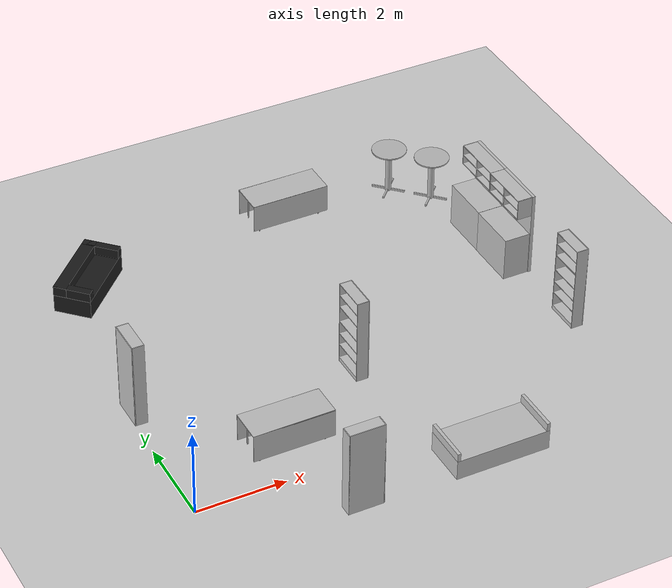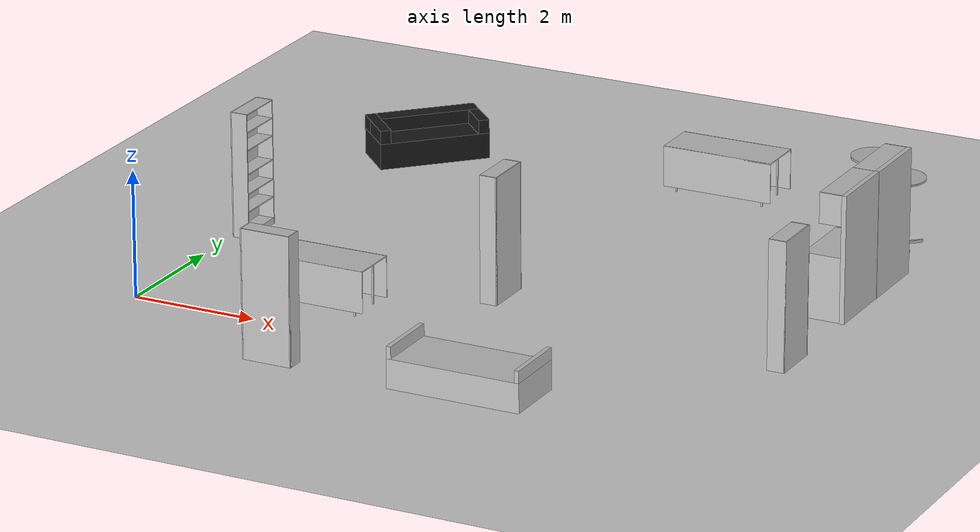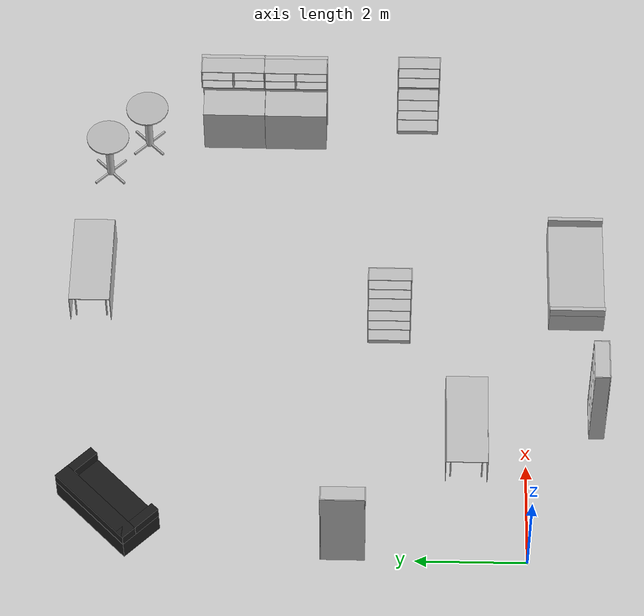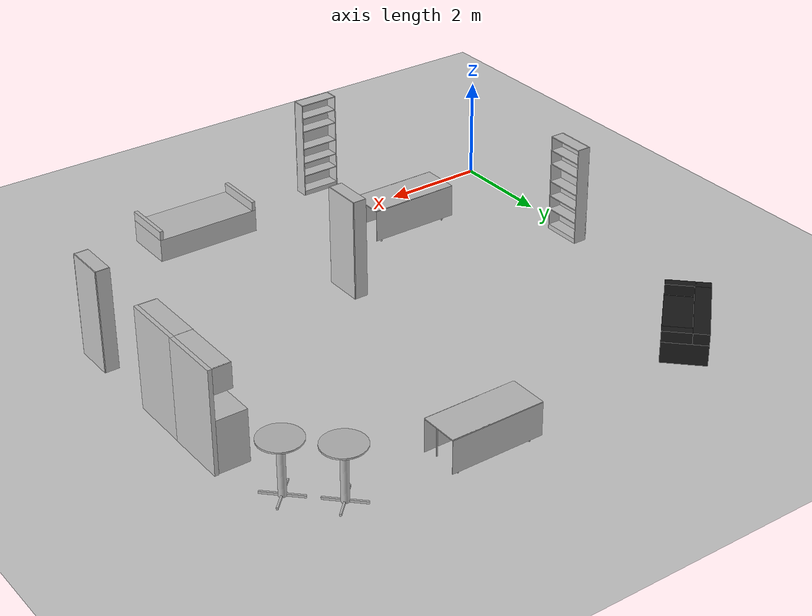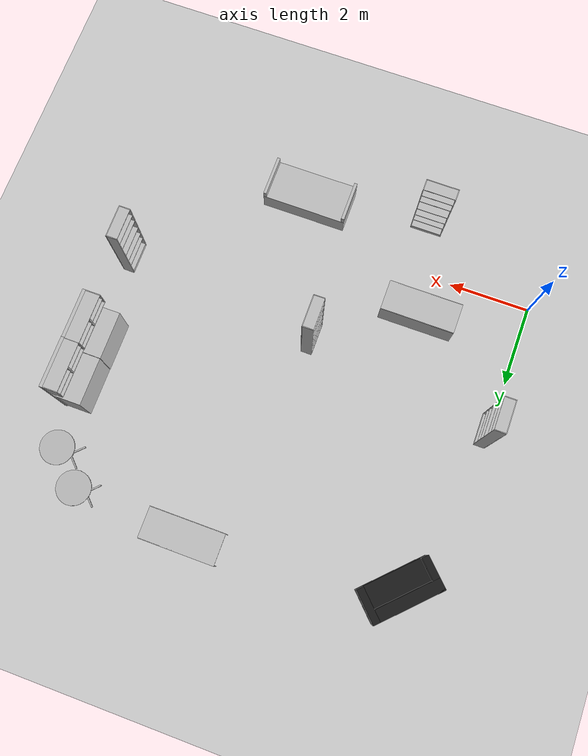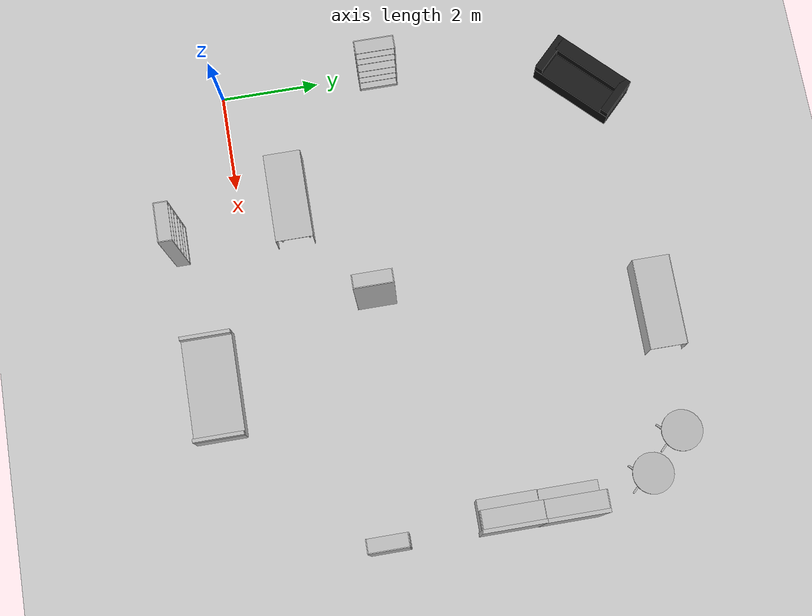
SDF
<sdf version="1.6">
 <world name="rgo2018">
  <light name="sun" type="directional">
   <direction>0.5 0.1 -0.9</direction>
   <pose>0 0 10 0 0 0</pose>
   <specular>0.2 0.2 0.2 1</specular>
   <diffuse>0.8 0.8 0.8 1</diffuse>
   <attenuation>
    <range>1000</range>
    <quadratic>0.001</quadratic>
    <constant>0.9</constant>
    <linear>0.01</linear>
   </attenuation>
  </light>
  <model name="living_room" type="room">
   <link name="in">
    <virtual_volume name="in1_vv">
     <geometry><box><size>3.0 2.5 0.01</size></box></geometry>
     <pose>2.5 -1.25 0.005 0 0 0</pose>
    </virtual_volume>
   </link>
   <link name="in">
    <virtual_volume name="in1_vv">
     <geometry><box><size>3.0 2.5 0.01</size></box></geometry>
     <pose>2.5 -1.25 0.005 0 0 0</pose>
    </virtual_volume>
   </link>
   <pose>3.0 6.0 0 0 0 0</pose>
   <static>true</static>
  </model>
  <model name="bedroom" type="room">
   <link name="in">
    <virtual_volume name="in_vv">
     <geometry><box><size>5.0 5.0 0.01</size></box></geometry>
     <pose>-0.5 0.0 0.005 0 0 0</pose>
    </virtual_volume>
   </link>
   <pose>8.0 1.0 0 0 0 0</pose>
   <static>true</static>
  </model>
  <model name="dining_room" type="room">
   <link name="in">
    <virtual_volume name="in_vv">
     <geometry><box><size>5 4.8 0.01</size></box></geometry>
     <pose>-0.5 1.05 0.005 0 0 0</pose>
    </virtual_volume>
   </link>
   <pose>3.0 0.0 0 0 0 0</pose>
   <static>true</static>
  </model>
  <model name="kitchen" type="room">
   <link name="in">
    <virtual_volume name="in1_vv">
     <geometry><box><size>5.7 2.5 0.01</size></box></geometry>
     <pose>-0.15 0.25 0.005 0 0 0</pose>
    </virtual_volume>
   </link>
   <link name="in">
    <virtual_volume name="in1_vv">
     <geometry><box><size>5.7 2.5 0.01</size></box></geometry>
     <pose>-0.15 0.25 0.005 0 0 0</pose>
    </virtual_volume>
   </link>
   <pose>7.0 7.0 0 0 0 0</pose>
   <static>true</static>
  </model>
  <model name="initial_pose" type="waypoint"><pose>-0.4 0.0 0 0 0 0</pose><static>true</static></model>
  <model name="initial_pose_2"><pose>8.48 -1.9 0 0 0 1.571</pose><static>true</static></model>
  <model name="lars" type="waypoint"><pose>8.0 6.5 0 0 0 1.5708</pose><static>true</static></model>
  <model name="waypoint_door_final" type="waypoint">
   <pose>1.0 0.0 0 0 0 3.141592</pose>
   <static>true</static>
  </model>
  <model name="bedroom_waypoint" type="waypoint"><pose>8.0 3.0 0 0 0 -2.3562</pose><static>true</static></model>
  <model name="kitchen_waypoint" type="waypoint"><pose>8.0 5.0 0 0 0 2.3562</pose><static>true</static></model>
  <model name="living_room_waypoint" type="waypoint">
   <pose>1.0 5.0 0 0 0 0.7854</pose>
   <static>true</static>
  </model>
  <model name="dining_room_waypoint" type="waypoint">
   <pose>1.5 3.0 0 0 0 -0.7854</pose>
   <static>true</static>
  </model>
  <model name="registration_table1" type="waypoint"><pose>5.0 7.0 0 0 0 0</pose><static>true</static></model>
  <model name="registration_table2" type="waypoint"><pose>3.0 7.0 0 0 0 0</pose><static>true</static></model>
  <model name="registration_table3" type="waypoint"><pose>7.0 7.0 0 0 0 0</pose><static>true</static></model>
  <model name="exit_1_rips" type="waypoint"><pose>8.45 -2.8 0 0 0 -1.571</pose><static>true</static></model>
  <model name="exit_2_rips" type="waypoint"><pose>8.45 -2.24 0 0 0 -1.571</pose><static>true</static></model>
  <model name="exit_3_rips" type="waypoint"><pose>8.45 -1.4 0 0 0 -1.571</pose><static>true</static></model>
  <model name="exit_4_rips" type="waypoint"><pose>8.45 0.0 0 0 0 -1.571</pose><static>true</static></model>
  <model name="gpsr_meeting_point" type="waypoint">
   <pose>5.0 6.6 0 0 0 -3.141592</pose>
   <static>true</static>
  </model>
  <model name="gpsr_exit_door_1" type="waypoint">
   <pose>8.45 -2.8 0 0 0 -1.571</pose>
   <static>true</static>
  </model>
  <model name="gpsr_meeting_point_2" type="waypoint"><pose>1.5 4.25 0 0 0 0</pose><static>true</static></model>
  <model name="gpsr_exit_door_2" type="waypoint">
   <pose>-1.0 0.0 0 0 0 -3.1415</pose>
   <static>true</static>
  </model>
  <model name="challenge_open_ask_waypoint" type="waypoint">
   <pose>4.0 6.0 0 0 0 3.1415</pose>
   <static>true</static>
  </model>
  <model name="final_meeting_point" type="waypoint">
   <pose>5.0 7.0 0 0 0 -1.57</pose>
   <static>true</static>
  </model>
  <model name="help_me_carry_starting_point" type="waypoint">
   <pose>8.0 4.5 0 0 0 1.5708</pose>
   <static>true</static>
  </model>
  <model name="eegpsr_pose_1" type="waypoint"><pose>0.4 4.5 0 0 0 0.0</pose><static>true</static></model>
  <model name="eegpsr_exit_door_1" type="waypoint">
   <pose>-1.0 0.0 0 0 0 3.1415</pose>
   <static>true</static>
  </model>
  <model name="eegpsr_pose_2" type="waypoint"><pose>6.6 4.2 0 0 0 1.571</pose><static>true</static></model>
  <model name="eegpsr_exit_door_2" type="waypoint">
   <pose>8.45 -2.8 0 0 0 -1.571</pose>
   <static>true</static>
  </model>
  <include><name>floor</name><uri>model://ground_plane</uri></include>
  <include>
   <pose>2.53 1.08 0.0 0 0 3.141585</pose>
   <name>dining_table</name>
   <uri>model://rgo2018/table_dinner</uri>
  </include>
  <include>
   <pose>3.02732 -1.283567 0.0 0 0 1.5708</pose>
   <name>display_case</name>
   <uri>model://rgo2018/bookcase</uri>
  </include>
  <include><pose>0.144 3.274 0.0 0 0 0.0</pose><name>cabinet</name><uri>model://rgo2018/bookcase</uri></include>
  <include>
   <pose>4.8 2.5 0.0 0 0 3.141592</pose>
   <name>storage_shelf</name>
   <uri>model://rgo2018/bookcase</uri>
  </include>
  <include>
   <pose>0.930263 7.469865 0.0 0 0 -0.7854</pose>
   <name>couch</name>
   <uri>model://rgo2018/couch</uri>
  </include>
  <include>
   <pose>5.922403 8.027883 0.0 0 0 3.14159</pose>
   <name>kitchen_table</name>
   <uri>model://rgo2018/table_dinner2</uri>
  </include>
  <include><pose>9.22352 7.158925 0.0 0 0 2.3562</pose><name>bar</name><uri>model://rgo2018/bar</uri></include>
  <include>
   <pose>9.53186 4.334334 0.0 0 0 3.141585</pose>
   <name>kitchen_cabinet</name>
   <uri>model://rgo2018/kitchen_sink</uri>
  </include>
  <include>
   <pose>9.537166 5.509867 0.0 0 0 3.141585</pose>
   <name>sink</name>
   <uri>model://rgo2018/kitchen_sink</uri>
  </include>
  <include>
   <pose>6.076955 -0.96774 0.0 0 0 -1.5708</pose>
   <name>bed</name>
   <uri>model://rgo2018/bed_frame</uri>
  </include>
  <include>
   <pose>9.7 2.0 0.0 0 0 3.141592</pose>
   <name>bookcase</name>
   <uri>model://rgo2018/bookcase</uri>
  </include>
  <physics type="ode">
   <real_time_update_rate>333.0</real_time_update_rate>
   <max_step_size>0.003</max_step_size>
   <ode><constraints><cfm>0.0001</cfm></constraints><solver><type>quick</type><iters>100</iters></solver></ode>
  </physics>
 </world>
</sdf>

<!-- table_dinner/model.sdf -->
<sdf version="1.6">
  <model name="rgo2018/table_dinner">
    <link name="1_link">
      <collision name="1_col">
        <geometry>
          <box>
            <size>1.83 0.76 0.018</size>
          </box>
        </geometry>
      </collision>
      <visual name="1_vis">
        <geometry>
          <box>
            <size>1.83 0.76 0.018</size>
          </box>
        </geometry>
        <material>
          <ambient>0.75 0.75 0.75 1</ambient>
        </material>
      </visual>
      <pose>0 0 0.751 0 0 0</pose>
    </link>
    <link name="2_link">
      <collision name="2_col">
        <geometry>
          <box>
            <size>1.83 0.01 0.66</size>
          </box>
        </geometry>
      </collision>
      <visual name="2_vis">
        <geometry>
          <box>
            <size>1.83 0.01 0.66</size>
          </box>
        </geometry>
        <material>
          <ambient>0.75 0.75 0.75 1</ambient>
        </material>
      </visual>
      <pose>0 0.375 0.43 0 0 0</pose>
    </link>
    <link name="3_link">
      <collision name="3_col">
        <geometry>
          <box>
            <size>1.83 0.01 0.66</size>
          </box>
        </geometry>
      </collision>
      <visual name="3_vis">
        <geometry>
          <box>
            <size>1.83 0.01 0.66</size>
          </box>
        </geometry>
        <material>
          <ambient>0.75 0.75 0.75 1</ambient>
        </material>
      </visual>
      <pose>0 -0.375 0.43 0 0 0</pose>
    </link>
    <link name="4_link">
      <collision name="4_col">
        <geometry>
          <box>
            <size>0.025 0.025 0.742</size>
          </box>
        </geometry>
      </collision>
      <visual name="4_vis">
        <geometry>
          <box>
            <size>0.025 0.025 0.742</size>
          </box>
        </geometry>
        <material>
          <ambient>0.75 0.75 0.75 1</ambient>
        </material>
      </visual>
      <pose>-0.7325 -0.2825 0.371 0 0 0</pose>
    </link>
    <link name="5_link">
      <collision name="5_col">
        <geometry>
          <box>
            <size>0.025 0.025 0.742</size>
          </box>
        </geometry>
      </collision>
      <visual name="5_vis">
        <geometry>
          <box>
            <size>0.025 0.025 0.742</size>
          </box>
        </geometry>
        <material>
          <ambient>0.75 0.75 0.75 1</ambient>
        </material>
      </visual>
      <pose>0.7325 -0.2825 0.371 0 0 0</pose>
    </link>
    <link name="6_link">
      <collision name="6_col">
        <geometry>
          <box>
            <size>0.025 0.025 0.742</size>
          </box>
        </geometry>
      </collision>
      <visual name="6_vis">
        <geometry>
          <box>
            <size>0.025 0.025 0.742</size>
          </box>
        </geometry>
        <material>
          <ambient>0.75 0.75 0.75 1</ambient>
        </material>
      </visual>
      <pose>-0.7325 0.2825 0.371 0 0 0</pose>
    </link>
    <link name="7_link">
      <collision name="7_col">
        <geometry>
          <box>
            <size>0.025 0.025 0.742</size>
          </box>
        </geometry>
      </collision>
      <visual name="7_vis">
        <geometry>
          <box>
            <size>0.025 0.025 0.742</size>
          </box>
        </geometry>
        <material>
          <ambient>0.75 0.75 0.75 1</ambient>
        </material>
      </visual>
      <pose>0.7325 0.2825 0.371 0 0 0</pose>
    </link>
    <link name="on_top_of">
      <virtual_volume name="on_top_of_vv">
        <geometry>
          <box>
            <size>1.77 0.7 0.25</size>
          </box>
        </geometry>
        <pose>0.0 0.0 0.905 0 0 0</pose>
      </virtual_volume>
    </link>
    <link name="in_front_of">
      <virtual_volume name="in_front_of_vv">
        <geometry>
          <box>
            <size>3.63 0.56 0.01</size>
          </box>
        </geometry>
        <pose>0.0 0.0 0.005 0 0 0</pose>
      </virtual_volume>
    </link>
    <static>true</static>
  </model>
</sdf>

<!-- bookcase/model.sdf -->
<sdf version="1.6">
  <model name="rgo2018/bookcase">
    <link name="1_link">
      <collision name="1_col">
        <geometry>
          <box>
            <size>0.28 0.018 2.015</size>
          </box>
        </geometry>
      </collision>
      <visual name="1_vis">
        <geometry>
          <box>
            <size>0.28 0.018 2.015</size>
          </box>
        </geometry>
        <material>
          <ambient>0.75 0.75 0.75 1</ambient>
        </material>
      </visual>
      <pose>0 -0.39 1.0075 0 0 0</pose>
    </link>
    <link name="2_link">
      <collision name="2_col">
        <geometry>
          <box>
            <size>0.28 0.018 2.015</size>
          </box>
        </geometry>
      </collision>
      <visual name="2_vis">
        <geometry>
          <box>
            <size>0.28 0.018 2.015</size>
          </box>
        </geometry>
        <material>
          <ambient>0.75 0.75 0.75 1</ambient>
        </material>
      </visual>
      <pose>0 0.39 1.0075 0 0 0</pose>
    </link>
    <link name="3_link">
      <collision name="3_col">
        <geometry>
          <box>
            <size>0.018 0.798 2.015</size>
          </box>
        </geometry>
      </collision>
      <visual name="3_vis">
        <geometry>
          <box>
            <size>0.018 0.798 2.015</size>
          </box>
        </geometry>
        <material>
          <ambient>0.75 0.75 0.75 1</ambient>
        </material>
      </visual>
      <pose>-0.131 0 1.0075 0 0 0</pose>
    </link>
    <link name="4_link">
      <collision name="4_col">
        <geometry>
          <box>
            <size>0.262 0.762 0.018</size>
          </box>
        </geometry>
      </collision>
      <visual name="4_vis">
        <geometry>
          <box>
            <size>0.262 0.762 0.018</size>
          </box>
        </geometry>
        <material>
          <ambient>0.75 0.75 0.75 1</ambient>
        </material>
      </visual>
      <pose>0.009 0 2.006 0 0 0</pose>
    </link>
    <link name="5_link">
      <collision name="5_col">
        <geometry>
          <box>
            <size>0.262 0.762 0.097</size>
          </box>
        </geometry>
      </collision>
      <visual name="5_vis">
        <geometry>
          <box>
            <size>0.262 0.762 0.097</size>
          </box>
        </geometry>
        <material>
          <ambient>0.75 0.75 0.75 1</ambient>
        </material>
      </visual>
      <pose>0.009 0 0.0485 0 0 0</pose>
    </link>
    <link name="6_link">
      <collision name="6_col">
        <geometry>
          <box>
            <size>0.262 0.762 0.018</size>
          </box>
        </geometry>
      </collision>
      <visual name="6_vis">
        <geometry>
          <box>
            <size>0.262 0.762 0.018</size>
          </box>
        </geometry>
        <material>
          <ambient>0.75 0.75 0.75 1</ambient>
        </material>
      </visual>
      <pose>0.009 0 0.439 0 0 0</pose>
    </link>
    <link name="7_link">
      <collision name="7_col">
        <geometry>
          <box>
            <size>0.262 0.762 0.018</size>
          </box>
        </geometry>
      </collision>
      <visual name="7_vis">
        <geometry>
          <box>
            <size>0.262 0.762 0.018</size>
          </box>
        </geometry>
        <material>
          <ambient>0.75 0.75 0.75 1</ambient>
        </material>
      </visual>
      <pose>0.009 0 0.726 0 0 0</pose>
    </link>
    <link name="8_link">
      <collision name="8_col">
        <geometry>
          <box>
            <size>0.262 0.762 0.018</size>
          </box>
        </geometry>
      </collision>
      <visual name="8_vis">
        <geometry>
          <box>
            <size>0.262 0.762 0.018</size>
          </box>
        </geometry>
        <material>
          <ambient>0.75 0.75 0.75 1</ambient>
        </material>
      </visual>
      <pose>0.009 0 1.044 0 0 0</pose>
    </link>
    <link name="9_link">
      <collision name="9_col">
        <geometry>
          <box>
            <size>0.262 0.762 0.018</size>
          </box>
        </geometry>
      </collision>
      <visual name="9_vis">
        <geometry>
          <box>
            <size>0.262 0.762 0.018</size>
          </box>
        </geometry>
        <material>
          <ambient>0.75 0.75 0.75 1</ambient>
        </material>
      </visual>
      <pose>0.009 0 1.43 0 0 0</pose>
    </link>
    <link name="10_link">
      <collision name="10_col">
        <geometry>
          <box>
            <size>0.262 0.762 0.018</size>
          </box>
        </geometry>
      </collision>
      <visual name="10_vis">
        <geometry>
          <box>
            <size>0.262 0.762 0.018</size>
          </box>
        </geometry>
        <material>
          <ambient>0.75 0.75 0.75 1</ambient>
        </material>
      </visual>
      <pose>0.009 0 1.718 0 0 0</pose>
    </link>
    <link name="in_front_of">
      <virtual_volume name="in_front_of_vv">
        <geometry>
          <box>
            <size>0.2 0.4 0.01</size>
          </box>
        </geometry>
        <pose>0.64 0.0 0.005 0 0 0</pose>
      </virtual_volume>
    </link>
    <link name="on_top_of">
      <virtual_volume name="on_top_of_vv">
        <geometry>
          <box>
            <size>0.202 0.702 0.25</size>
          </box>
        </geometry>
        <pose>0.009 0.0 0.88 0 0 0</pose>
      </virtual_volume>
    </link>
    <link name="shelf1">
      <virtual_volume name="shelf1_vv">
        <geometry>
          <box>
            <size>0.202 0.702 0.25</size>
          </box>
        </geometry>
        <pose>0.009 0.0 0.242 0 0 0</pose>
      </virtual_volume>
    </link>
    <link name="shelf2">
      <virtual_volume name="shelf2_vv">
        <geometry>
          <box>
            <size>0.202 0.702 0.212</size>
          </box>
        </geometry>
        <pose>0.009 0.0 0.574 0 0 0</pose>
      </virtual_volume>
    </link>
    <link name="shelf3">
      <virtual_volume name="shelf3_vv">
        <geometry>
          <box>
            <size>0.202 0.702 0.25</size>
          </box>
        </geometry>
        <pose>0.009 0.0 0.88 0 0 0</pose>
      </virtual_volume>
    </link>
    <link name="shelf4">
      <virtual_volume name="shelf4_vv">
        <geometry>
          <box>
            <size>0.202 0.702 0.25</size>
          </box>
        </geometry>
        <pose>0.009 0.0 1.198 0 0 0</pose>
      </virtual_volume>
    </link>
    <link name="shelf5">
      <virtual_volume name="shelf5_vv">
        <geometry>
          <box>
            <size>0.202 0.702 0.221</size>
          </box>
        </geometry>
        <pose>0.009 0.0 1.5695 0 0 0</pose>
      </virtual_volume>
    </link>
    <link name="shelf6">
      <virtual_volume name="shelf6_vv">
        <geometry>
          <box>
            <size>0.202 0.702 0.223</size>
          </box>
        </geometry>
        <pose>0.009 0.0 1.8585 0 0 0</pose>
      </virtual_volume>
    </link>
    <static>true</static>
  </model>
</sdf>

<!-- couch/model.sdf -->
<sdf version="1.6">
  <model name="rgo2018/couch">
    <link name="1_link">
      <collision name="1_col">
        <geometry>
          <box>
            <size>0.85 1.8 0.42</size>
          </box>
        </geometry>
      </collision>
      <visual name="1_vis">
        <geometry>
          <box>
            <size>0.85 1.8 0.42</size>
          </box>
        </geometry>
        <material>
          <ambient>0.1 0.1 0.1 1</ambient>
        </material>
      </visual>
      <pose>0.0 0.0 0.21 0 0 0</pose>
    </link>
    <link name="2_link">
      <collision name="2_col">
        <geometry>
          <box>
            <size>0.3 1.8 0.225</size>
          </box>
        </geometry>
      </collision>
      <visual name="2_vis">
        <geometry>
          <box>
            <size>0.3 1.8 0.225</size>
          </box>
        </geometry>
        <material>
          <ambient>0.1 0.1 0.1 1</ambient>
        </material>
      </visual>
      <pose>-0.275 0.0 0.5325 0 0 0</pose>
    </link>
    <link name="3_link">
      <collision name="3_col">
        <geometry>
          <box>
            <size>0.85 0.175 0.225</size>
          </box>
        </geometry>
      </collision>
      <visual name="3_vis">
        <geometry>
          <box>
            <size>0.85 0.175 0.225</size>
          </box>
        </geometry>
        <material>
          <ambient>0.1 0.1 0.1 1</ambient>
        </material>
      </visual>
      <pose>0.0 -0.812 0.5325 0 0 0</pose>
    </link>
    <link name="4_link">
      <collision name="4_col">
        <geometry>
          <box>
            <size>0.85 0.175 0.225</size>
          </box>
        </geometry>
      </collision>
      <visual name="4_vis">
        <geometry>
          <box>
            <size>0.85 0.175 0.225</size>
          </box>
        </geometry>
        <material>
          <ambient>0.1 0.1 0.1 1</ambient>
        </material>
      </visual>
      <pose>0.0 0.812 0.5325 0 0 0</pose>
    </link>
    <link name="on_top_of">
      <virtual_volume name="on_top_of_vv">
        <geometry>
          <box>
            <size>0.35 1.36 0.32</size>
          </box>
        </geometry>
        <pose>0.175 0.0 0.6 0 0 0</pose>
      </virtual_volume>
    </link>
    <link name="in_front_of">
      <virtual_volume name="in_front_of_vv">
        <geometry>
          <box>
            <size>0.2 0.6 0.01</size>
          </box>
        </geometry>
        <pose>1.05 0.0 0.005 0 0 0</pose>
      </virtual_volume>
    </link>
    <static>true</static>
  </model>
</sdf>

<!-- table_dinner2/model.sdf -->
<sdf version="1.6">
  <model name="rgo2018/table_dinner2">
    <link name="1_link">
      <collision name="1_col">
        <geometry>
          <box>
            <size>1.83 0.76 0.018</size>
          </box>
        </geometry>
      </collision>
      <visual name="1_vis">
        <geometry>
          <box>
            <size>1.83 0.76 0.018</size>
          </box>
        </geometry>
        <material>
          <ambient>0.75 0.75 0.75 1</ambient>
        </material>
      </visual>
      <pose>0 0 0.751 0 0 0</pose>
    </link>
    <link name="2_link">
      <collision name="2_col">
        <geometry>
          <box>
            <size>1.83 0.01 0.66</size>
          </box>
        </geometry>
      </collision>
      <visual name="2_vis">
        <geometry>
          <box>
            <size>1.83 0.01 0.66</size>
          </box>
        </geometry>
        <material>
          <ambient>0.75 0.75 0.75 1</ambient>
        </material>
      </visual>
      <pose>0 0.375 0.43 0 0 0</pose>
    </link>
    <link name="3_link">
      <collision name="3_col">
        <geometry>
          <box>
            <size>1.83 0.01 0.66</size>
          </box>
        </geometry>
      </collision>
      <visual name="3_vis">
        <geometry>
          <box>
            <size>1.83 0.01 0.66</size>
          </box>
        </geometry>
        <material>
          <ambient>0.75 0.75 0.75 1</ambient>
        </material>
      </visual>
      <pose>0 -0.375 0.43 0 0 0</pose>
    </link>
    <link name="4_link">
      <collision name="4_col">
        <geometry>
          <box>
            <size>0.025 0.025 0.742</size>
          </box>
        </geometry>
      </collision>
      <visual name="4_vis">
        <geometry>
          <box>
            <size>0.025 0.025 0.742</size>
          </box>
        </geometry>
        <material>
          <ambient>0.75 0.75 0.75 1</ambient>
        </material>
      </visual>
      <pose>-0.7325 -0.2825 0.371 0 0 0</pose>
    </link>
    <link name="5_link">
      <collision name="5_col">
        <geometry>
          <box>
            <size>0.025 0.025 0.742</size>
          </box>
        </geometry>
      </collision>
      <visual name="5_vis">
        <geometry>
          <box>
            <size>0.025 0.025 0.742</size>
          </box>
        </geometry>
        <material>
          <ambient>0.75 0.75 0.75 1</ambient>
        </material>
      </visual>
      <pose>0.7325 -0.2825 0.371 0 0 0</pose>
    </link>
    <link name="6_link">
      <collision name="6_col">
        <geometry>
          <box>
            <size>0.025 0.025 0.742</size>
          </box>
        </geometry>
      </collision>
      <visual name="6_vis">
        <geometry>
          <box>
            <size>0.025 0.025 0.742</size>
          </box>
        </geometry>
        <material>
          <ambient>0.75 0.75 0.75 1</ambient>
        </material>
      </visual>
      <pose>-0.7325 0.2825 0.371 0 0 0</pose>
    </link>
    <link name="7_link">
      <collision name="7_col">
        <geometry>
          <box>
            <size>0.025 0.025 0.742</size>
          </box>
        </geometry>
      </collision>
      <visual name="7_vis">
        <geometry>
          <box>
            <size>0.025 0.025 0.742</size>
          </box>
        </geometry>
        <material>
          <ambient>0.75 0.75 0.75 1</ambient>
        </material>
      </visual>
      <pose>0.7325 0.2825 0.371 0 0 0</pose>
    </link>
    <link name="on_top_of">
      <virtual_volume name="on_top_of_vv">
        <geometry>
          <box>
            <size>1.77 0.7 0.25</size>
          </box>
        </geometry>
        <pose>0.0 0.0 0.905 0 0 0</pose>
      </virtual_volume>
    </link>
    <link name="in_front_of">
      <virtual_volume name="in_front_of_vv">
        <geometry>
          <box>
            <size>1.2 0.7 0.01</size>
          </box>
        </geometry>
        <pose>0.0 0.75 0.005 0 0 0</pose>
      </virtual_volume>
    </link>
    <static>true</static>
  </model>
</sdf>

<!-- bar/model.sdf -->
<sdf version="1.6">
  <model name="rgo2018/bar">
    <link name="1_link">
      <collision name="1_col">
        <geometry>
          <cylinder>
            <length>0.03</length>
            <radius>0.4</radius>
          </cylinder>
        </geometry>
      </collision>
      <visual name="1_vis">
        <geometry>
          <cylinder>
            <length>0.03</length>
            <radius>0.4</radius>
          </cylinder>
        </geometry>
      </visual>
      <pose>0 0 1.085 0 0 0</pose>
    </link>
    <link name="2_link">
      <collision name="2_col">
        <geometry>
          <cylinder>
            <length>1.08</length>
            <radius>0.0725</radius>
          </cylinder>
        </geometry>
      </collision>
      <visual name="2_vis">
        <geometry>
          <cylinder>
            <length>1.08</length>
            <radius>0.0725</radius>
          </cylinder>
        </geometry>
      </visual>
      <pose>0 0 0.54 0 0 0</pose>
    </link>
    <link name="3_link">
      <collision name="3_col">
        <geometry>
          <box>
            <size>0.775 0.035 0.045</size>
          </box>
        </geometry>
      </collision>
      <visual name="3_vis">
        <geometry>
          <box>
            <size>0.775 0.035 0.045</size>
          </box>
        </geometry>
      </visual>
      <pose>0 0 0.0225 0 0 0</pose>
    </link>
    <link name="4_link">
      <collision name="4_col">
        <geometry>
          <box>
            <size>0.035 0.775 0.045</size>
          </box>
        </geometry>
      </collision>
      <visual name="4_vis">
        <geometry>
          <box>
            <size>0.035 0.775 0.045</size>
          </box>
        </geometry>
      </visual>
      <pose>0 0 0.0225 0 0 0</pose>
    </link>
    <link name="5_link">
      <collision name="5_col">
        <geometry>
          <cylinder>
            <length>0.03</length>
            <radius>0.4</radius>
          </cylinder>
        </geometry>
      </collision>
      <visual name="5_vis">
        <geometry>
          <cylinder>
            <length>0.03</length>
            <radius>0.4</radius>
          </cylinder>
        </geometry>
      </visual>
      <pose>1 0 1.085 0 0 0</pose>
    </link>
    <link name="6_link">
      <collision name="6_col">
        <geometry>
          <cylinder>
            <length>1.08</length>
            <radius>0.0725</radius>
          </cylinder>
        </geometry>
      </collision>
      <visual name="6_vis">
        <geometry>
          <cylinder>
            <length>1.08</length>
            <radius>0.0725</radius>
          </cylinder>
        </geometry>
      </visual>
      <pose>1 0 0.54 0 0 0</pose>
    </link>
    <link name="7_link">
      <collision name="7_col">
        <geometry>
          <box>
            <size>0.775 0.035 0.045</size>
          </box>
        </geometry>
      </collision>
      <visual name="7_vis">
        <geometry>
          <box>
            <size>0.775 0.035 0.045</size>
          </box>
        </geometry>
      </visual>
      <pose>1 0 0.0225 0 0 0</pose>
    </link>
    <link name="8_link">
      <collision name="8_col">
        <geometry>
          <box>
            <size>0.035 0.775 0.045</size>
          </box>
        </geometry>
      </collision>
      <visual name="8_vis">
        <geometry>
          <box>
            <size>0.035 0.775 0.045</size>
          </box>
        </geometry>
      </visual>
      <pose>1 0 0.0225 0 0 0</pose>
    </link>
    <link name="in_front_of">
      <virtual_volume name="in_front_of_vv">
        <geometry>
          <box>
            <size>1.6 0.25 0.01</size>
          </box>
        </geometry>
        <pose>0.5 0.775 0.005 0 0 0</pose>
      </virtual_volume>
    </link>
    <link name="on_top_of">
      <virtual_volume name="on_top_of_vv">
        <geometry>
          <box>
            <size>1.52 0.52 0.15</size>
          </box>
        </geometry>
        <pose>0.5 0.0 1.195 0 0 0</pose>
      </virtual_volume>
    </link>
    <static>true</static>
  </model>
</sdf>

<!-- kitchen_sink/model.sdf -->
<sdf version="1.6">
  <model name="rgo2018/kitchen_sink">
    <link name="1_link">
      <collision name="1_col">
        <geometry>
          <box>
            <size>0.6 1.169 1.02</size>
          </box>
        </geometry>
      </collision>
      <visual name="1_vis">
        <geometry>
          <box>
            <size>0.6 1.169 1.02</size>
          </box>
        </geometry>
        <material>
          <ambient>0.75 0.75 0.75 1</ambient>
        </material>
      </visual>
      <pose>0.083 0 0.51 0 0 0</pose>
    </link>
    <link name="2_link">
      <collision name="2_col">
        <geometry>
          <box>
            <size>0.078 1.205 2.002</size>
          </box>
        </geometry>
      </collision>
      <visual name="2_vis">
        <geometry>
          <box>
            <size>0.078 1.205 2.002</size>
          </box>
        </geometry>
        <material>
          <ambient>0.75 0.75 0.75 1</ambient>
        </material>
      </visual>
      <pose>-0.256 0 1.001 0 0 0</pose>
    </link>
    <link name="3_link">
      <collision name="3_col">
        <geometry>
          <box>
            <size>0.35 0.018 0.482</size>
          </box>
        </geometry>
      </collision>
      <visual name="3_vis">
        <geometry>
          <box>
            <size>0.35 0.018 0.482</size>
          </box>
        </geometry>
        <material>
          <ambient>0.75 0.75 0.75 1</ambient>
        </material>
      </visual>
      <pose>-0.042 -0.5935 1.76 0 0 0</pose>
    </link>
    <link name="4_link">
      <collision name="4_col">
        <geometry>
          <box>
            <size>0.35 0.018 0.482</size>
          </box>
        </geometry>
      </collision>
      <visual name="4_vis">
        <geometry>
          <box>
            <size>0.35 0.018 0.482</size>
          </box>
        </geometry>
        <material>
          <ambient>0.75 0.75 0.75 1</ambient>
        </material>
      </visual>
      <pose>-0.042 0.5935 1.76 0 0 0</pose>
    </link>
    <link name="5_link">
      <collision name="5_col">
        <geometry>
          <box>
            <size>0.35 1.169 0.018</size>
          </box>
        </geometry>
      </collision>
      <visual name="5_vis">
        <geometry>
          <box>
            <size>0.35 1.169 0.018</size>
          </box>
        </geometry>
        <material>
          <ambient>0.75 0.75 0.75 1</ambient>
        </material>
      </visual>
      <pose>-0.042 0 1.993 0 0 0</pose>
    </link>
    <link name="6_link">
      <collision name="6_col">
        <geometry>
          <box>
            <size>0.35 1.169 0.018</size>
          </box>
        </geometry>
      </collision>
      <visual name="6_vis">
        <geometry>
          <box>
            <size>0.35 1.169 0.018</size>
          </box>
        </geometry>
        <material>
          <ambient>0.75 0.75 0.75 1</ambient>
        </material>
      </visual>
      <pose>-0.042 0 1.529 0 0 0</pose>
    </link>
    <link name="7_link">
      <collision name="7_col">
        <geometry>
          <box>
            <size>0.35 1.169 0.018</size>
          </box>
        </geometry>
      </collision>
      <visual name="7_vis">
        <geometry>
          <box>
            <size>0.35 1.169 0.018</size>
          </box>
        </geometry>
        <material>
          <ambient>0.75 0.75 0.75 1</ambient>
        </material>
      </visual>
      <pose>-0.042 0 1.754 0 0 0</pose>
    </link>
    <link name="8_link">
      <collision name="8_col">
        <geometry>
          <box>
            <size>0.35 0.036 0.482</size>
          </box>
        </geometry>
      </collision>
      <visual name="8_vis">
        <geometry>
          <box>
            <size>0.35 0.036 0.482</size>
          </box>
        </geometry>
        <material>
          <ambient>0.75 0.75 0.75 1</ambient>
        </material>
      </visual>
      <pose>-0.042 0 1.76 0 0 0</pose>
    </link>
    <link name="in_front_of">
      <virtual_volume name="in_front_of_vv">
        <geometry>
          <box>
            <size>0.2 1.005 0.01</size>
          </box>
        </geometry>
        <pose>1.3 0.0 0.005 0 0 0</pose>
      </virtual_volume>
    </link>
    <link name="on_top_of">
      <virtual_volume name="on_top_of_vv">
        <geometry>
          <box>
            <size>0.53 1.14 0.3</size>
          </box>
        </geometry>
        <pose>0.078 0.0 1.19 0 0 0</pose>
      </virtual_volume>
    </link>
    <static>true</static>
  </model>
</sdf>

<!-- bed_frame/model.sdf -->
<sdf version="1.6">
  <model name="rgo2018/bed_frame">
    <link name="1_link">
      <collision name="1_col">
        <geometry>
          <box>
            <size>1.02 2.12 0.46</size>
          </box>
        </geometry>
      </collision>
      <visual name="1_vis">
        <geometry>
          <box>
            <size>1.02 2.12 0.46</size>
          </box>
        </geometry>
        <material>
          <ambient>0.75 0.75 0.75 1</ambient>
        </material>
      </visual>
      <pose>0 0 0.23 0 0 0</pose>
    </link>
    <link name="2_link">
      <collision name="2_col">
        <geometry>
          <box>
            <size>1.02 0.075 0.19</size>
          </box>
        </geometry>
      </collision>
      <visual name="2_vis">
        <geometry>
          <box>
            <size>1.02 0.075 0.19</size>
          </box>
        </geometry>
        <material>
          <ambient>0.75 0.75 0.75 1</ambient>
        </material>
      </visual>
      <pose>0 -1.0225 0.555 0 0 0</pose>
    </link>
    <link name="3_link">
      <collision name="3_col">
        <geometry>
          <box>
            <size>1.02 0.075 0.19</size>
          </box>
        </geometry>
      </collision>
      <visual name="3_vis">
        <geometry>
          <box>
            <size>1.02 0.075 0.19</size>
          </box>
        </geometry>
        <material>
          <ambient>0.75 0.75 0.75 1</ambient>
        </material>
      </visual>
      <pose>0 1.0225 0.555 0 0 0</pose>
    </link>
    <link name="in_front_of">
      <virtual_volume name="in_front_of_vv">
        <geometry>
          <box>
            <size>2.2 2.1 0.01</size>
          </box>
        </geometry>
        <pose>0.0 0.55 0.005 0 0 0</pose>
      </virtual_volume>
    </link>
    <static>true</static>
  </model>
</sdf>
